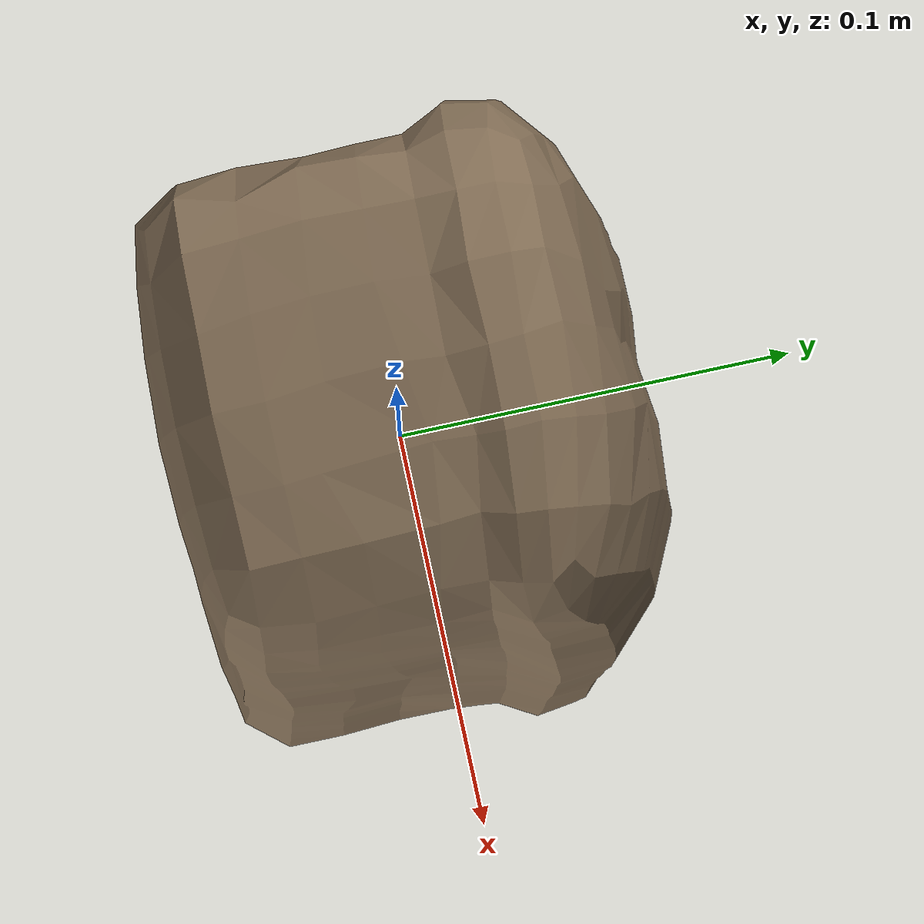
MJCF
<mujoco model="Bread_2">
  <compiler autolimits="true" boundmass="0.01" angle="radian"/>
  <default>
    <default class="/">
      <default class="__VISUAL_MJT__">
        <geom contype="0" conaffinity="0" group="0"/>
      </default>
      <default class="__STRUCTURAL_MJT__">
        <geom contype="8" conaffinity="15" group="4" friction="0.90000000000000002 0.90000000000000002 0.001" solref="0.025000000000000001 1" solimp="0.998 0.998 0.001"/>
      </default>
      <default class="__DYNAMIC_MJT__">
        <geom contype="1" conaffinity="15" group="4" friction="0.90000000000000002 0.90000000000000002 0.001" solref="0.025000000000000001 1" solimp="0.998 0.998 0.001"/>
      </default>
    </default>
  </default>
  <asset>
    <texture name="Bread1_Mat2" type="2d" file="Bread1_AlbedoTransparency.png"/>
    <material name="material_Bread1_Mat2" class="/" texture="Bread1_Mat2" specular="0.5" shininess="0.5" rgba="0.69852939999999997 0.61238219999999999 0.50335209999999997 1"/>
    <mesh name="Bread_2_bread1_b_mesh" class="/" file="Bread_2_bread1_b_mesh/Bread_2_bread1_b_mesh.obj" scale="1 1 1"/>
  </asset>
  <worldbody>
    <body name="Bread_2">
      <joint name="Bread_2_free" class="/" type="free" pos="0 0 0" axis="0 0 1" stiffness="0" range="0 0" armature="0" damping="0.10000000000000001" frictionloss="0"/>
      <body name="Bread_2_bread1_b_mesh" pos="-0 0.012699999999999999 0" quat="1 0 0 0">
        <geom name="Bread_2_bread1_b_mesh" class="__VISUAL_MJT__" type="mesh" material="material_Bread1_Mat2" shellinertia="false" mesh="Bread_2_bread1_b_mesh"/>
        <geom name="Bread_2_PrimitiveCollider_0" class="__DYNAMIC_MJT__" type="box" size="0.063802003860473633 0.059776902198791504 0.13492798805236816" rgba="0 1 0 1" pos="-0 -0.012697577476501465 0" quat="1 0 0 0"/>
      </body>
    </body>
  </worldbody>
</mujoco>
